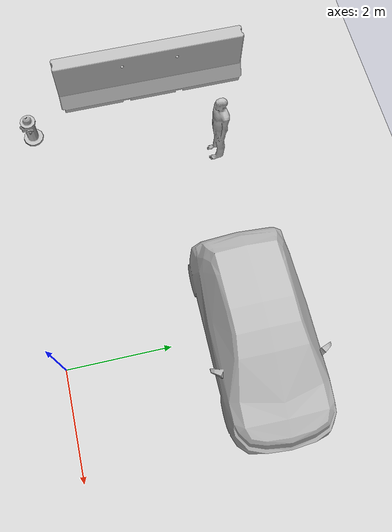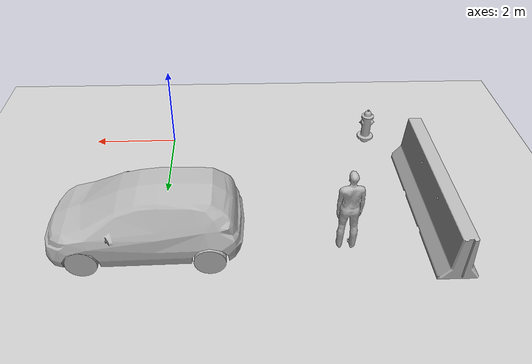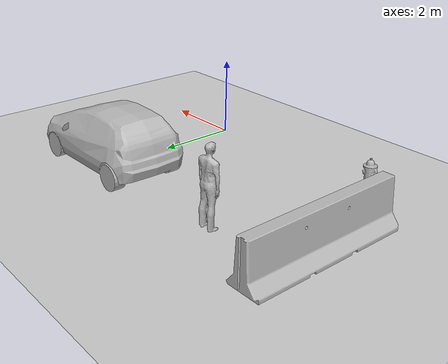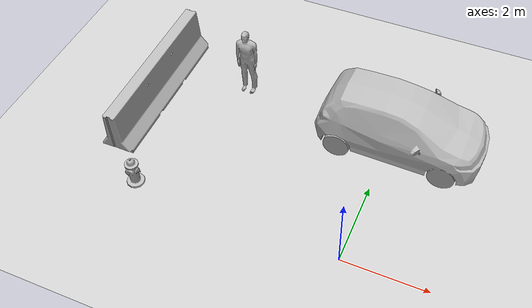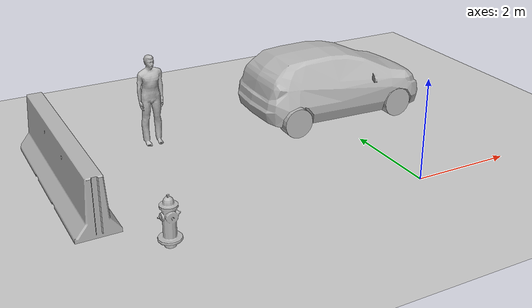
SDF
<sdf version="1.6">
 <world name="default">
  <light name="sun" type="directional">
   <pose>0 0 10 0 -0 0</pose>
   <diffuse>0.8 0.8 0.8 1</diffuse>
   <specular>0.2 0.2 0.2 1</specular>
   <attenuation>
    <range>1000</range>
    <constant>0.9</constant>
    <linear>0.01</linear>
    <quadratic>0.001</quadratic>
   </attenuation>
   <direction>-0.5 0.1 -0.9</direction>
  </light>
  <model name="ground_plane">
   <static>1</static>
   <link name="link">
    <collision name="collision">
     <geometry><plane><normal>0 0 1</normal><size>100 100</size></plane></geometry>
     <surface>
      <contact><collide_bitmask>65535</collide_bitmask></contact>
      <friction><ode><mu>100</mu><mu2>50</mu2></ode></friction>
     </surface>
    </collision>
    <visual name="visual">
     <cast_shadows>0</cast_shadows>
     <geometry><plane><normal>0 0 1</normal><size>100 100</size></plane></geometry>
     <material>
      <script><uri>file://media/materials/scripts/gazebo.material</uri><name>Gazebo/Grey</name></script>
     </material>
    </visual>
   </link>
  </model>
  <gravity>0 0 -9.8</gravity>
  <magnetic_field>6e-06 2.3e-05 -4.2e-05</magnetic_field>
  <atmosphere type="adiabatic"/>
  <physics name="default_physics" default="0" type="ode">
   <max_step_size>0.001</max_step_size>
   <real_time_factor>1</real_time_factor>
   <real_time_update_rate>1000</real_time_update_rate>
  </physics>
  <scene><ambient>0.4 0.4 0.4 1</ambient><background>0.7 0.7 0.7 1</background><shadows>1</shadows></scene>
  <audio><device>default</device></audio>
  <spherical_coordinates>
   <surface_model>EARTH_WGS84</surface_model>
   <latitude_deg>0</latitude_deg>
   <longitude_deg>0</longitude_deg>
   <elevation>0</elevation>
   <heading_deg>0</heading_deg>
  </spherical_coordinates>
  <model name="fire_hydrant">
   <static>1</static>
   <link name="link">
    <collision name="collision">
     <geometry><mesh><uri>model://fire_hydrant/meshes/fire_hydrant.dae</uri></mesh></geometry>
    </collision>
    <visual name="visual">
     <geometry><mesh><uri>model://fire_hydrant/meshes/fire_hydrant.dae</uri></mesh></geometry>
    </visual>
   </link>
   <pose>-4.97197 0.103285 0 0 -0 0</pose>
  </model>
  <model name="hatchback_blue">
   <static>1</static>
   <link name="link">
    <collision name="collision">
     <pose>0 0 0 0 -0 1.5708</pose>
     <geometry>
      <mesh><scale>0.0254 0.0254 0.0254</scale><uri>model://hatchback_blue/meshes/hatchback.obj</uri></mesh>
     </geometry>
    </collision>
    <visual name="visual">
     <pose>0 0 0 0 -0 1.5708</pose>
     <geometry>
      <mesh><scale>0.0254 0.0254 0.0254</scale><uri>model://hatchback_blue/meshes/hatchback.obj</uri></mesh>
     </geometry>
    </visual>
   </link>
   <pose>-0.111122 3.57868 0 0 -0 0</pose>
  </model>
  <model name="jersey_barrier">
   <static>1</static>
   <link name="link">
    <visual name="visual">
     <geometry><mesh><uri>model://jersey_barrier/meshes/jersey_barrier.dae</uri></mesh></geometry>
    </visual>
    <collision name="upright">
     <pose>0 0 0.5715 0 -0 0</pose>
     <geometry><box><size>4.06542 0.3063 1.143</size></box></geometry>
    </collision>
    <collision name="base">
     <pose>0 0 0.032258 0 -0 0</pose>
     <geometry><box><size>4.06542 0.8107 0.064516</size></box></geometry>
    </collision>
    <collision name="base2">
     <pose>0 0 0.1 0 -0 0</pose>
     <geometry><box><size>4.06542 0.65 0.1</size></box></geometry>
    </collision>
    <collision name="base3">
     <pose>0 0 0.2 0 -0 0</pose>
     <geometry><box><size>4.06542 0.5 0.1</size></box></geometry>
    </collision>
    <collision name="left-angle">
     <pose>0 -0.224 0.2401 0.9 -0 0</pose>
     <geometry><box><size>4.06542 0.5 0.064516</size></box></geometry>
    </collision>
    <collision name="right-angle">
     <pose>0 0.224 0.2401 -0.9 0 0</pose>
     <geometry><box><size>4.06542 0.5 0.064516</size></box></geometry>
    </collision>
   </link>
   <pose>-5.93665 2.82417 0 0 0 -1.56684</pose>
  </model>
  <model name="person_standing">
   <link name="link">
    <inertial>
     <pose>0 -0.1 0.95 0 -0 0</pose>
     <mass>80</mass>
     <inertia><ixx>24.88</ixx><ixy>0</ixy><ixz>0</ixz><iyy>25.73</iyy><iyz>0</iyz><izz>2.48</izz></inertia>
    </inertial>
    <collision name="bottom">
     <pose>0 -0.1 0.01 0 -0 0</pose>
     <geometry><box><size>0.5 0.35 0.02</size></box></geometry>
    </collision>
    <collision name="person">
     <pose>0 0 0.02 0.04 -0 0</pose>
     <geometry><mesh><uri>model://person_standing/meshes/standing.dae</uri></mesh></geometry>
    </collision>
    <visual name="visual">
     <pose>0 0 0.02 0.04 -0 0</pose>
     <geometry><mesh><uri>model://person_standing/meshes/standing.dae</uri></mesh></geometry>
    </visual>
   </link>
   <pose>-3.86756 3.91524 0 1e-06 -1e-06 -0.000401</pose>
  </model>
 </world>
</sdf>
